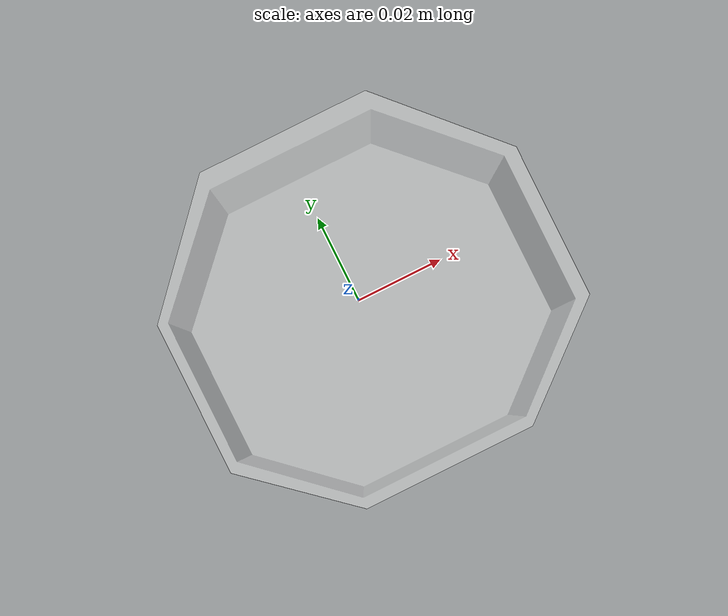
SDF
<?xml version='1.0'?>
<sdf version='1.6'>
  <model name='demo_cube_green'>
    <link name='link'>
          <inertial>
          <mass>0.05</mass>
          <inertia>
            <ixx>0.001</ixx>
            <ixy>0.000000</ixy>
            <ixz>0.000000</ixz>
            <iyy>0.001</iyy>
            <iyz>0.000000</iyz>
            <izz>0.001</izz>
          </inertia>
        </inertial>
       <visual name='visual'>
        <pose frame=''>0 0 -0.05 0 -0 0</pose>
        <geometry>
          <mesh>
            <uri>model://cup_glass_hex/meshes/cup_glass2.dae</uri>
            <scale>1 1 1</scale>
          </mesh>
        </geometry>
        <material>
          <lighting>1</lighting>
          <ambient>0.976 0.976 0.976 1</ambient>
          <diffuse>0.976 0.976 0.976 1</diffuse>
          <specular>0.01 0.01 0.01 1</specular>
          <emissive>0 0 0 1</emissive>
          <shader type='vertex'>
            <normal_map>__default__</normal_map>
          </shader>
        </material>
        <cast_shadows>1</cast_shadows>
        <transparency>0.6</transparency>
      </visual>

       <collision name='collision'>
        <laser_retro>0</laser_retro>
        <max_contacts>10</max_contacts>
        <pose frame=''>0 0 0 0 -0 0</pose>
        <geometry>
          <box>
            <size>0.070 0.070 0.10</size>
          </box>
        </geometry>
        <surface>
          <friction>
            <ode>
              <mu>100.0</mu>
              <mu2>100.0</mu2>
            </ode>
          </friction>
          <contact>
            <ode>
              <kp>1000000.0</kp>
              <kd>100.0</kd>
              <max_vel>1.0</max_vel>
              <min_depth>0.002</min_depth>
            </ode>
          </contact>
        </surface>
      </collision>

    </link>
    <static>0</static>
    <allow_auto_disable>1</allow_auto_disable>
  </model>
</sdf>
